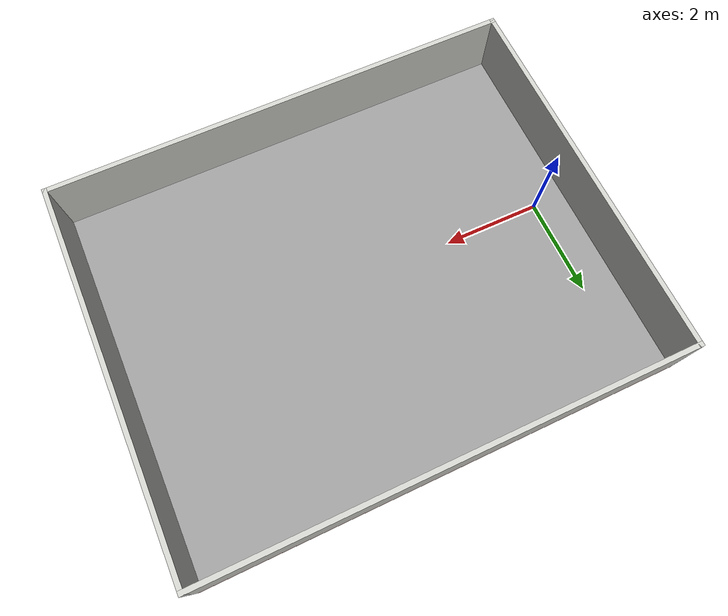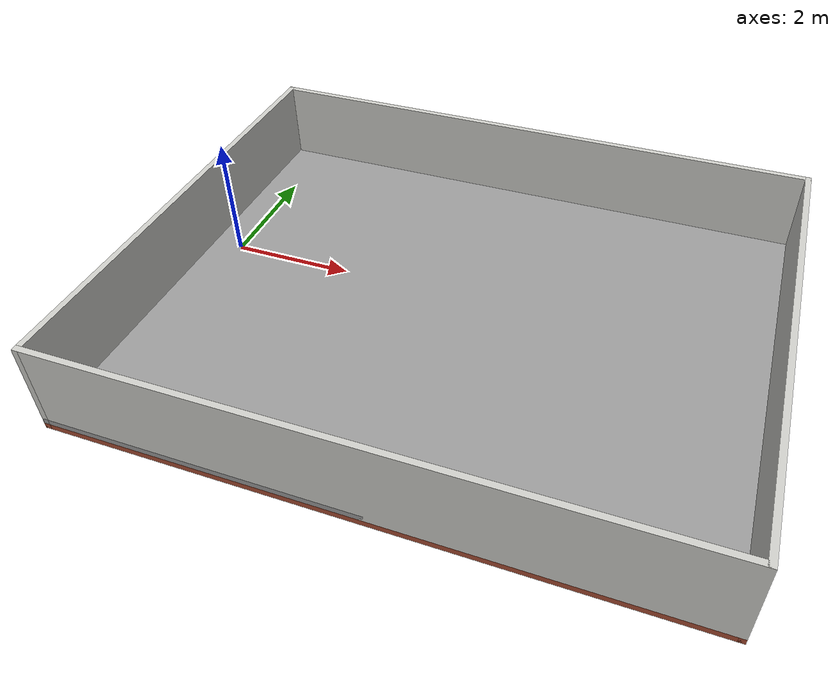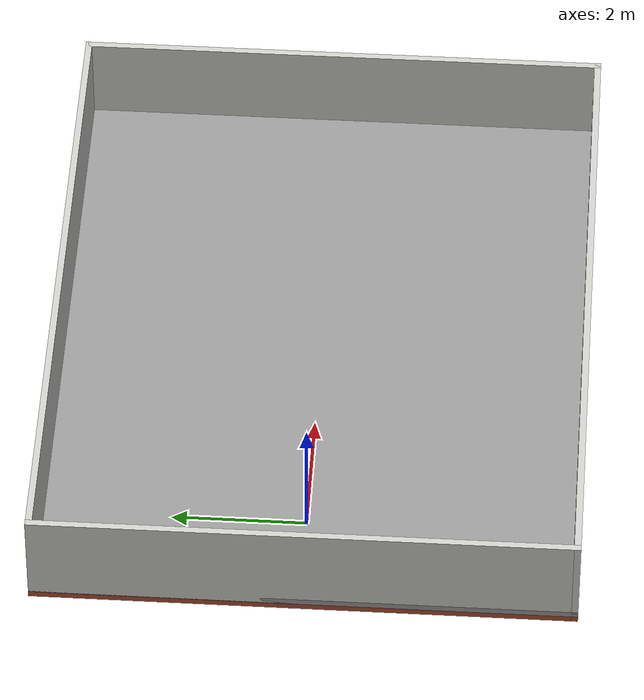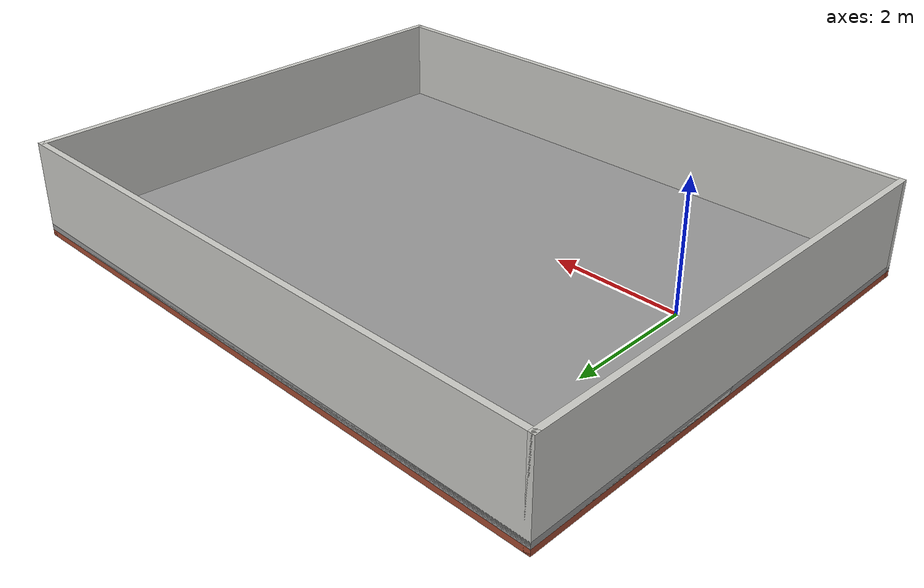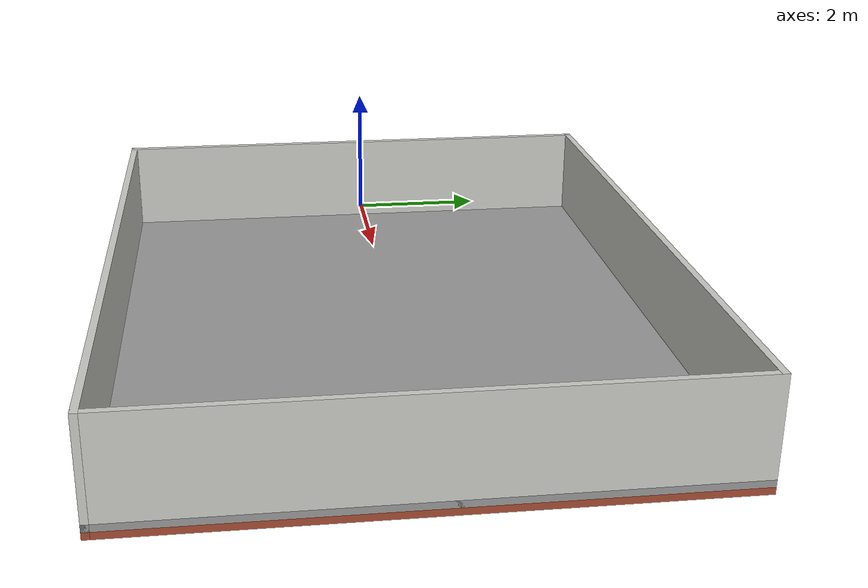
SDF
<?xml version='1.0'?>
<sdf version='1.6'>
  <world name="mallards_pond">
    <include>
        <uri>model://sun</uri>
    </include>

  <model name='large_pond'>
    <pose frame=''>4 0 -0.7 0 -0 0</pose>
    <link name='Floor_0'>
      <collision name='Floor_0_Collision'>
        <geometry>
          <box>
            <size>10.1 8.1 0.1</size>
          </box>
        </geometry>
        <pose frame=''>0 0 0.05 0 -0 0</pose>
      </collision>
      <visual name='Floor_0_Visual'>
        <pose frame=''>0 0 0.05 0 -0 0</pose>
        <geometry>
          <box>
            <size>10.1 8.1 0.1</size>
          </box>
        </geometry>
        <material>
          <script>
            <uri>file://media/materials/scripts/gazebo.material</uri>
            <name>Gazebo/Grey</name>
          </script>
          <ambient>1 1 1 1</ambient>
        </material>
        <meta>
          <layer>1</layer>
        </meta>
      </visual>
      <pose frame=''>0 0 0.1 0 -0 0</pose>
    </link>
    <link name='Wall_13'>
      <collision name='Wall_13_Collision'>
        <geometry>
          <box>
            <size>8.1 0.1 0.1</size>
          </box>
        </geometry>
        <pose frame=''>0 0 0.05 0 -0 0</pose>
      </collision>
      <visual name='Wall_13_Visual'>
        <pose frame=''>0 0 0.05 0 -0 0</pose>
        <geometry>
          <box>
            <size>8.1 0.1 0.1</size>
          </box>
        </geometry>
        <material>
          <script>
            <uri>file://media/materials/scripts/gazebo.material</uri>
            <name>Gazebo/Bricks</name>
          </script>
          <ambient>1 1 1 1</ambient>
        </material>
        <meta>
          <layer>0</layer>
        </meta>
      </visual>
      <pose frame=''>5 0 0 0 -0 -1.5708</pose>
    </link>
    <link name='Wall_15'>
      <collision name='Wall_15_Collision'>
        <geometry>
          <box>
            <size>8.1 0.1 0.1</size>
          </box>
        </geometry>
        <pose frame=''>0 0 0.05 0 -0 0</pose>
      </collision>
      <visual name='Wall_15_Visual'>
        <pose frame=''>0 0 0.05 0 -0 0</pose>
        <geometry>
          <box>
            <size>8.1 0.1 0.1</size>
          </box>
        </geometry>
        <material>
          <script>
            <uri>file://media/materials/scripts/gazebo.material</uri>
            <name>Gazebo/Bricks</name>
          </script>
          <ambient>1 1 1 1</ambient>
        </material>
        <meta>
          <layer>0</layer>
        </meta>
      </visual>
      <pose frame=''>-5 0 0 0 -0 1.5708</pose>
    </link>
    <link name='Wall_17'>
      <collision name='Wall_17_Collision'>
        <geometry>
          <box>
            <size>10.1 0.1 0.1</size>
          </box>
        </geometry>
        <pose frame=''>0 0 0.05 0 -0 0</pose>
      </collision>
      <visual name='Wall_17_Visual'>
        <pose frame=''>0 0 0.05 0 -0 0</pose>
        <geometry>
          <box>
            <size>10.1 0.1 0.1</size>
          </box>
        </geometry>
        <material>
          <script>
            <uri>file://media/materials/scripts/gazebo.material</uri>
            <name>Gazebo/Bricks</name>
          </script>
          <ambient>1 1 1 1</ambient>
        </material>
        <meta>
          <layer>0</layer>
        </meta>
      </visual>
      <pose frame=''>0 -4 0 0 -0 0</pose>
    </link>
    <link name='Wall_19'>
      <collision name='Wall_19_Collision'>
        <geometry>
          <box>
            <size>10.1 0.1 0.1</size>
          </box>
        </geometry>
        <pose frame=''>0 0 0.05 0 -0 0</pose>
      </collision>
      <visual name='Wall_19_Visual'>
        <pose frame=''>0 0 0.05 0 -0 0</pose>
        <geometry>
          <box>
            <size>10.1 0.1 0.1</size>
          </box>
        </geometry>
        <material>
          <script>
            <uri>file://media/materials/scripts/gazebo.material</uri>
            <name>Gazebo/Bricks</name>
          </script>
          <ambient>1 1 1 1</ambient>
        </material>
        <meta>
          <layer>0</layer>
        </meta>
      </visual>
      <pose frame=''>0 4 0 0 -0 0</pose>
    </link>
    <link name='Wall_21'>
      <collision name='Wall_21_Collision'>
        <geometry>
          <box>
            <size>8.1 0.1 0.1</size>
          </box>
        </geometry>
        <pose frame=''>0 0 0.05 0 -0 0</pose>
      </collision>
      <visual name='Wall_21_Visual'>
        <pose frame=''>0 0 0.05 0 -0 0</pose>
        <geometry>
          <box>
            <size>8.1 0.1 0.1</size>
          </box>
        </geometry>
        <material>
          <script>
            <uri>file://media/materials/scripts/gazebo.material</uri>
            <name>Gazebo/Grey</name>
          </script>
          <ambient>1 1 1 1</ambient>
        </material>
        <meta>
          <layer>1</layer>
        </meta>
      </visual>
      <pose frame=''>5 0 0.1 0 -0 -1.5708</pose>
    </link>
    <link name='Wall_22'>
      <collision name='Wall_22_Collision'>
        <geometry>
          <box>
            <size>8.1 0.1 0.1</size>
          </box>
        </geometry>
        <pose frame=''>0 0 0.05 0 -0 0</pose>
      </collision>
      <visual name='Wall_22_Visual'>
        <pose frame=''>0 0 0.05 0 -0 0</pose>
        <geometry>
          <box>
            <size>8.1 0.1 0.1</size>
          </box>
        </geometry>
        <material>
          <script>
            <uri>file://media/materials/scripts/gazebo.material</uri>
            <name>Gazebo/Grey</name>
          </script>
          <ambient>1 1 1 1</ambient>
        </material>
        <meta>
          <layer>1</layer>
        </meta>
      </visual>
      <pose frame=''>-5 0 0.1 0 -0 1.5708</pose>
    </link>
    <link name='Wall_23'>
      <collision name='Wall_23_Collision'>
        <geometry>
          <box>
            <size>10.1 0.1 0.1</size>
          </box>
        </geometry>
        <pose frame=''>0 0 0.05 0 -0 0</pose>
      </collision>
      <visual name='Wall_23_Visual'>
        <pose frame=''>0 0 0.05 0 -0 0</pose>
        <geometry>
          <box>
            <size>10.1 0.1 0.1</size>
          </box>
        </geometry>
        <material>
          <script>
            <uri>file://media/materials/scripts/gazebo.material</uri>
            <name>Gazebo/Grey</name>
          </script>
          <ambient>1 1 1 1</ambient>
        </material>
        <meta>
          <layer>1</layer>
        </meta>
      </visual>
      <pose frame=''>0 -4 0.1 0 -0 0</pose>
    </link>
    <link name='Wall_24'>
      <collision name='Wall_24_Collision'>
        <geometry>
          <box>
            <size>10.1 0.1 0.1</size>
          </box>
        </geometry>
        <pose frame=''>0 0 0.05 0 -0 0</pose>
      </collision>
      <visual name='Wall_24_Visual'>
        <pose frame=''>0 0 0.05 0 -0 0</pose>
        <geometry>
          <box>
            <size>10.1 0.1 0.1</size>
          </box>
        </geometry>
        <material>
          <script>
            <uri>file://media/materials/scripts/gazebo.material</uri>
            <name>Gazebo/Grey</name>
          </script>
          <ambient>1 1 1 1</ambient>
        </material>
        <meta>
          <layer>1</layer>
        </meta>
      </visual>
      <pose frame=''>0 4 0.1 0 -0 0</pose>
    </link>
    <link name='Wall_25'>
      <collision name='Wall_25_Collision'>
        <geometry>
          <box>
            <size>8.1 0.1 1.5</size>
          </box>
        </geometry>
        <pose frame=''>0 0 0.75 0 -0 0</pose>
      </collision>
      <visual name='Wall_25_Visual'>
        <pose frame=''>0 0 0.75 0 -0 0</pose>
        <geometry>
          <box>
            <size>8.1 0.1 1.5</size>
          </box>
        </geometry>
        <material>
          <script>
            <uri>file://media/materials/scripts/gazebo.material</uri>
            <name>Gazebo/CeilingTiled</name>
          </script>
          <ambient>1 1 1 1</ambient>
        </material>
        <meta>
          <layer>1</layer>
        </meta>
      </visual>
      <pose frame=''>-5 0 0.1 0 -0 1.5708</pose>
    </link>
    <link name='Wall_26'>
      <collision name='Wall_26_Collision'>
        <geometry>
          <box>
            <size>10.1 0.1 1.5</size>
          </box>
        </geometry>
        <pose frame=''>0 0 0.75 0 -0 0</pose>
      </collision>
      <visual name='Wall_26_Visual'>
        <pose frame=''>0 0 0.75 0 -0 0</pose>
        <geometry>
          <box>
            <size>10.1 0.1 1.5</size>
          </box>
        </geometry>
        <material>
          <script>
            <uri>file://media/materials/scripts/gazebo.material</uri>
            <name>Gazebo/CeilingTiled</name>
          </script>
          <ambient>1 1 1 1</ambient>
        </material>
        <meta>
          <layer>1</layer>
        </meta>
      </visual>
      <pose frame=''>0 4 0.1 0 -0 0</pose>
    </link>
    <link name='Wall_27'>
      <collision name='Wall_27_Collision'>
        <geometry>
          <box>
            <size>8.1 0.1 1.5</size>
          </box>
        </geometry>
        <pose frame=''>0 0 0.75 0 -0 0</pose>
      </collision>
      <visual name='Wall_27_Visual'>
        <pose frame=''>0 0 0.75 0 -0 0</pose>
        <geometry>
          <box>
            <size>8.1 0.1 1.5</size>
          </box>
        </geometry>
        <material>
          <script>
            <uri>file://media/materials/scripts/gazebo.material</uri>
            <name>Gazebo/CeilingTiled</name>
          </script>
          <ambient>1 1 1 1</ambient>
        </material>
        <meta>
          <layer>1</layer>
        </meta>
      </visual>
      <pose frame=''>5 0 0.1 0 -0 -1.5708</pose>
    </link>
    <link name='Wall_28'>
      <collision name='Wall_28_Collision'>
        <geometry>
          <box>
            <size>10.1 0.1 1.5</size>
          </box>
        </geometry>
        <pose frame=''>0 0 0.75 0 -0 0</pose>
      </collision>
      <visual name='Wall_28_Visual'>
        <pose frame=''>0 0 0.75 0 -0 0</pose>
        <geometry>
          <box>
            <size>10.1 0.1 1.5</size>
          </box>
        </geometry>
        <material>
          <script>
            <uri>file://media/materials/scripts/gazebo.material</uri>
            <name>Gazebo/CeilingTiled</name>
          </script>
          <ambient>1 1 1 1</ambient>
        </material>
        <meta>
          <layer>1</layer>
        </meta>
      </visual>
      <pose frame=''>0 -4 0.1 0 -0 3.14159</pose>
    </link>
    <static>1</static>
  </model>
  <!-- end of model -->

  <!-- buoyancy plugin -->
    <plugin name="freefloating_gazebo_fluid" filename="libfreefloating_gazebo_fluid.so">
            <descriptionParam>robot_description</descriptionParam>
            <fluidTopic>current</fluidTopic>
            <alwaysOn>true</alwaysOn>
            <surface>0 0 0</surface>
            <updateRate>.001</updateRate>
    </plugin>
  </world>
</sdf>
